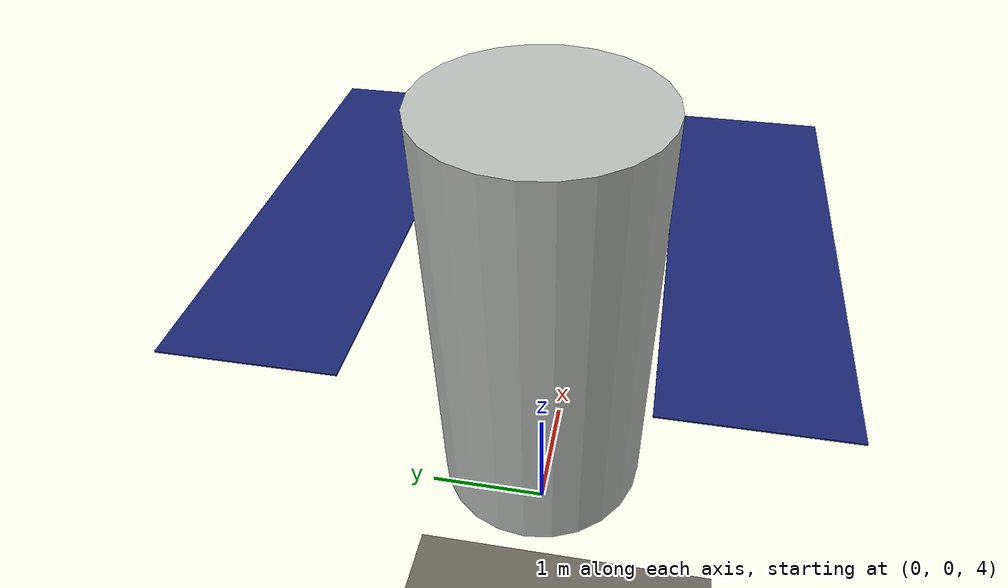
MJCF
<mujoco model="astraant_mothership_landing">

  <compiler angle="degree" coordinate="local"/>
  <option timestep="0.002" gravity="0 0 -9.81">
    <flag contact="enable"/>
  </option>

  <default>
    <geom condim="4" friction="0.6 0.01 0.001"/>
  </default>

  <asset>
    <material name="hull_aluminum" rgba="0.72 0.74 0.72 1"/>
    <material name="base_cone" rgba="0.60 0.62 0.60 1"/>
    <material name="anchor_steel" rgba="0.45 0.45 0.48 1"/>
    <material name="drill_tip" rgba="0.35 0.35 0.38 1"/>
    <material name="solar_blue" rgba="0.10 0.15 0.45 1"/>
    <material name="regolith" rgba="0.42 0.40 0.36 1"/>
  </asset>

  <worldbody>
    <light diffuse="0.9 0.9 0.85" dir="-0.2 -0.3 -1" pos="0 0 10"/>
    <light diffuse="0.3 0.3 0.35" dir="0.5 0.5 -0.3" pos="-5 -5 5"/>

    <geom name="ground" type="plane" size="20 20 0.1"
          material="regolith" friction="0.5 0.01 0.001"
          solref="0.02 0.9" solimp="0.9 0.95 0.001"/>

    <!-- ============ MOTHERSHIP ============ -->
    <body name="mothership" pos="0 0 5">
      <freejoint name="root"/>
      <camera name="side" pos="5 0 3" xyaxes="0 1 0 -0.3 0 1" mode="track"/>
      <camera name="top" pos="0 0 15" xyaxes="1 0 0 0 1 0" mode="track"/>

      <!-- Main hull cylinder: 1.6m dia x 3.2m (upper portion) -->
      <geom name="hull" type="cylinder" size="0.8 1.6"
            pos="0 0 1.2" mass="650" material="hull_aluminum"/>

      <!-- Conical base section (landing cone): ~0.8m tall -->
      <!-- Approximated as a tapered stack of cylinders -->
      <geom name="base_upper" type="cylinder" size="0.75 0.15"
            pos="0 0 -0.25" mass="60" material="base_cone"/>
      <geom name="base_mid" type="cylinder" size="0.55 0.15"
            pos="0 0 -0.55" mass="40" material="base_cone"/>
      <geom name="base_lower" type="cylinder" size="0.35 0.1"
            pos="0 0 -0.75" mass="30" material="base_cone"
            friction="0.8 0.01 0.001"/>

      <!-- Base plate (contact ring for gasket seal) -->
      <geom name="base_plate" type="cylinder" size="0.40 0.02"
            pos="0 0 -0.87" mass="20" material="anchor_steel"
            friction="0.8 0.02 0.005"/>

      <!-- Drill tip (extends below base plate during boring) -->
      <geom name="drill_tip" type="cylinder" size="0.10 0.05"
            pos="0 0 -0.94" mass="15" material="drill_tip"
            friction="0.4 0.01 0.001"/>

      <!-- 4 Screw anchor feet at base perimeter (90deg apart) -->
      <!-- These are the first contact points -->
      <geom name="anchor_0" type="sphere" size="0.05"
            pos="0.35 0 -0.89" mass="2.5" material="anchor_steel"
            friction="1.5 0.05 0.01"/>
      <geom name="anchor_1" type="sphere" size="0.05"
            pos="0 0.35 -0.89" mass="2.5" material="anchor_steel"
            friction="1.5 0.05 0.01"/>
      <geom name="anchor_2" type="sphere" size="0.05"
            pos="-0.35 0 -0.89" mass="2.5" material="anchor_steel"
            friction="1.5 0.05 0.01"/>
      <geom name="anchor_3" type="sphere" size="0.05"
            pos="0 -0.35 -0.89" mass="2.5" material="anchor_steel"
            friction="1.5 0.05 0.01"/>

      <!-- Solar panel wings (deployed, for visual reference) -->
      <geom name="solar_L" type="box" size="1.5 0.5 0.005"
            pos="0 1.3 2.0" mass="15" material="solar_blue"/>
      <geom name="solar_R" type="box" size="1.5 0.5 0.005"
            pos="0 -1.3 2.0" mass="15" material="solar_blue"/>

    </body>
  </worldbody>

  <sensor>
    <framepos name="mothership_pos" objtype="body" objname="mothership"/>
    <framequat name="mothership_quat" objtype="body" objname="mothership"/>
    <framelinvel name="mothership_vel" objtype="body" objname="mothership"/>
    <frameangvel name="mothership_angvel" objtype="body" objname="mothership"/>
  </sensor>

</mujoco>
